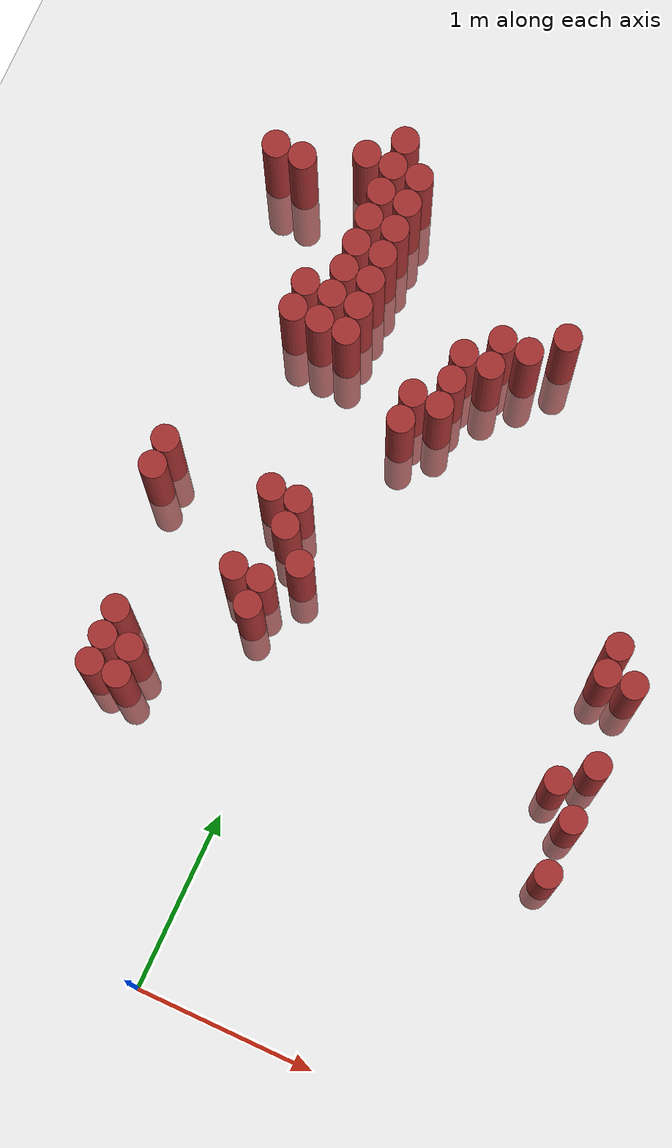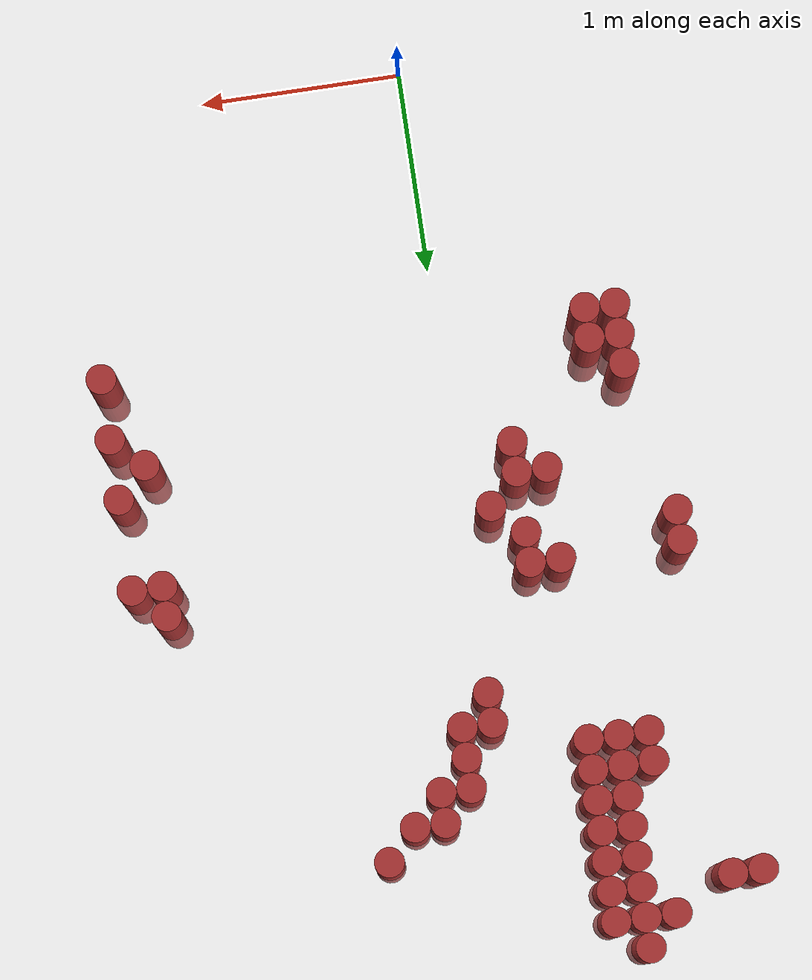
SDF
<sdf version="1.6">
 <world name="default">
  <model name="ground_plane">
   <static>1</static>
   <link name="link">
    <collision name="collision">
     <geometry><plane><normal>0 0 1</normal><size>100 100</size></plane></geometry>
     <surface><friction><ode><mu>100</mu><mu2>50</mu2></ode></friction></surface>
    </collision>
    <visual name="visual">
     <cast_shadows>0</cast_shadows>
     <geometry><plane><normal>0 0 1</normal><size>100 100</size></plane></geometry>
     <material>
      <script><uri>file://media/materials/scripts/gazebo.material</uri><name>Gazebo/Grey</name></script>
     </material>
    </visual>
   </link>
  </model>
  <model name="unit_cylinder_166">
   <static>1</static>
   <pose>-1.175000 4.225000 0.000000 0.000000 0.000000 0.000000</pose>
   <link name="link">
    <inertial>
     <mass>1</mass>
     <inertia><ixx>0.145833</ixx><ixy>0</ixy><ixz>0</ixz><iyy>0.145833</iyy><iyz>0</iyz><izz>0.125</izz></inertia>
    </inertial>
    <collision name="collision">
     <geometry><cylinder><radius>0.075000</radius><length>1.5</length></cylinder></geometry>
    </collision>
    <visual name="visual">
     <geometry><cylinder><radius>0.075000</radius><length>1.5</length></cylinder></geometry>
     <material>
      <ambient>0.648000 0.192000 0.192000 1</ambient>
      <diffuse>0.648000 0.192000 0.192000 1</diffuse>
     </material>
     <material>
      <script><name>Gazebo/Grey</name><uri>file://media/materials/scripts/gazebo.material</uri></script>
     </material>
    </visual>
   </link>
  </model>
  <model name="unit_cylinder_167">
   <static>1</static>
   <pose>-1.025000 2.425000 0.000000 0.000000 0.000000 0.000000</pose>
   <link name="link">
    <inertial>
     <mass>1</mass>
     <inertia><ixx>0.145833</ixx><ixy>0</ixy><ixz>0</ixz><iyy>0.145833</iyy><iyz>0</iyz><izz>0.125</izz></inertia>
    </inertial>
    <collision name="collision">
     <geometry><cylinder><radius>0.075000</radius><length>1.5</length></cylinder></geometry>
    </collision>
    <visual name="visual">
     <geometry><cylinder><radius>0.075000</radius><length>1.5</length></cylinder></geometry>
     <material>
      <ambient>0.648000 0.192000 0.192000 1</ambient>
      <diffuse>0.648000 0.192000 0.192000 1</diffuse>
     </material>
     <material>
      <script><name>Gazebo/Grey</name><uri>file://media/materials/scripts/gazebo.material</uri></script>
     </material>
    </visual>
   </link>
  </model>
  <model name="unit_cylinder_168">
   <static>1</static>
   <pose>-1.025000 2.575000 0.000000 0.000000 0.000000 0.000000</pose>
   <link name="link">
    <inertial>
     <mass>1</mass>
     <inertia><ixx>0.145833</ixx><ixy>0</ixy><ixz>0</ixz><iyy>0.145833</iyy><iyz>0</iyz><izz>0.125</izz></inertia>
    </inertial>
    <collision name="collision">
     <geometry><cylinder><radius>0.075000</radius><length>1.5</length></cylinder></geometry>
    </collision>
    <visual name="visual">
     <geometry><cylinder><radius>0.075000</radius><length>1.5</length></cylinder></geometry>
     <material>
      <ambient>0.648000 0.192000 0.192000 1</ambient>
      <diffuse>0.648000 0.192000 0.192000 1</diffuse>
     </material>
     <material>
      <script><name>Gazebo/Grey</name><uri>file://media/materials/scripts/gazebo.material</uri></script>
     </material>
    </visual>
   </link>
  </model>
  <model name="unit_cylinder_169">
   <static>1</static>
   <pose>-1.025000 4.225000 0.000000 0.000000 0.000000 0.000000</pose>
   <link name="link">
    <inertial>
     <mass>1</mass>
     <inertia><ixx>0.145833</ixx><ixy>0</ixy><ixz>0</ixz><iyy>0.145833</iyy><iyz>0</iyz><izz>0.125</izz></inertia>
    </inertial>
    <collision name="collision">
     <geometry><cylinder><radius>0.075000</radius><length>1.5</length></cylinder></geometry>
    </collision>
    <visual name="visual">
     <geometry><cylinder><radius>0.075000</radius><length>1.5</length></cylinder></geometry>
     <material>
      <ambient>0.648000 0.192000 0.192000 1</ambient>
      <diffuse>0.648000 0.192000 0.192000 1</diffuse>
     </material>
     <material>
      <script><name>Gazebo/Grey</name><uri>file://media/materials/scripts/gazebo.material</uri></script>
     </material>
    </visual>
   </link>
  </model>
  <model name="unit_cylinder_170">
   <static>1</static>
   <pose>-0.875000 1.375000 0.000000 0.000000 0.000000 0.000000</pose>
   <link name="link">
    <inertial>
     <mass>1</mass>
     <inertia><ixx>0.145833</ixx><ixy>0</ixy><ixz>0</ixz><iyy>0.145833</iyy><iyz>0</iyz><izz>0.125</izz></inertia>
    </inertial>
    <collision name="collision">
     <geometry><cylinder><radius>0.075000</radius><length>1.5</length></cylinder></geometry>
    </collision>
    <visual name="visual">
     <geometry><cylinder><radius>0.075000</radius><length>1.5</length></cylinder></geometry>
     <material>
      <ambient>0.648000 0.192000 0.192000 1</ambient>
      <diffuse>0.648000 0.192000 0.192000 1</diffuse>
     </material>
     <material>
      <script><name>Gazebo/Grey</name><uri>file://media/materials/scripts/gazebo.material</uri></script>
     </material>
    </visual>
   </link>
  </model>
  <model name="unit_cylinder_171">
   <static>1</static>
   <pose>-0.875000 1.525000 0.000000 0.000000 0.000000 0.000000</pose>
   <link name="link">
    <inertial>
     <mass>1</mass>
     <inertia><ixx>0.145833</ixx><ixy>0</ixy><ixz>0</ixz><iyy>0.145833</iyy><iyz>0</iyz><izz>0.125</izz></inertia>
    </inertial>
    <collision name="collision">
     <geometry><cylinder><radius>0.075000</radius><length>1.5</length></cylinder></geometry>
    </collision>
    <visual name="visual">
     <geometry><cylinder><radius>0.075000</radius><length>1.5</length></cylinder></geometry>
     <material>
      <ambient>0.648000 0.192000 0.192000 1</ambient>
      <diffuse>0.648000 0.192000 0.192000 1</diffuse>
     </material>
     <material>
      <script><name>Gazebo/Grey</name><uri>file://media/materials/scripts/gazebo.material</uri></script>
     </material>
    </visual>
   </link>
  </model>
  <model name="unit_cylinder_172">
   <static>1</static>
   <pose>-0.875000 1.675000 0.000000 0.000000 0.000000 0.000000</pose>
   <link name="link">
    <inertial>
     <mass>1</mass>
     <inertia><ixx>0.145833</ixx><ixy>0</ixy><ixz>0</ixz><iyy>0.145833</iyy><iyz>0</iyz><izz>0.125</izz></inertia>
    </inertial>
    <collision name="collision">
     <geometry><cylinder><radius>0.075000</radius><length>1.5</length></cylinder></geometry>
    </collision>
    <visual name="visual">
     <geometry><cylinder><radius>0.075000</radius><length>1.5</length></cylinder></geometry>
     <material>
      <ambient>0.648000 0.192000 0.192000 1</ambient>
      <diffuse>0.648000 0.192000 0.192000 1</diffuse>
     </material>
     <material>
      <script><name>Gazebo/Grey</name><uri>file://media/materials/scripts/gazebo.material</uri></script>
     </material>
    </visual>
   </link>
  </model>
  <model name="unit_cylinder_173">
   <static>1</static>
   <pose>-0.725000 1.375000 0.000000 0.000000 0.000000 0.000000</pose>
   <link name="link">
    <inertial>
     <mass>1</mass>
     <inertia><ixx>0.145833</ixx><ixy>0</ixy><ixz>0</ixz><iyy>0.145833</iyy><iyz>0</iyz><izz>0.125</izz></inertia>
    </inertial>
    <collision name="collision">
     <geometry><cylinder><radius>0.075000</radius><length>1.5</length></cylinder></geometry>
    </collision>
    <visual name="visual">
     <geometry><cylinder><radius>0.075000</radius><length>1.5</length></cylinder></geometry>
     <material>
      <ambient>0.648000 0.192000 0.192000 1</ambient>
      <diffuse>0.648000 0.192000 0.192000 1</diffuse>
     </material>
     <material>
      <script><name>Gazebo/Grey</name><uri>file://media/materials/scripts/gazebo.material</uri></script>
     </material>
    </visual>
   </link>
  </model>
  <model name="unit_cylinder_174">
   <static>1</static>
   <pose>-0.725000 1.525000 0.000000 0.000000 0.000000 0.000000</pose>
   <link name="link">
    <inertial>
     <mass>1</mass>
     <inertia><ixx>0.145833</ixx><ixy>0</ixy><ixz>0</ixz><iyy>0.145833</iyy><iyz>0</iyz><izz>0.125</izz></inertia>
    </inertial>
    <collision name="collision">
     <geometry><cylinder><radius>0.075000</radius><length>1.5</length></cylinder></geometry>
    </collision>
    <visual name="visual">
     <geometry><cylinder><radius>0.075000</radius><length>1.5</length></cylinder></geometry>
     <material>
      <ambient>0.648000 0.192000 0.192000 1</ambient>
      <diffuse>0.648000 0.192000 0.192000 1</diffuse>
     </material>
     <material>
      <script><name>Gazebo/Grey</name><uri>file://media/materials/scripts/gazebo.material</uri></script>
     </material>
    </visual>
   </link>
  </model>
  <model name="unit_cylinder_175">
   <static>1</static>
   <pose>-0.725000 3.475000 0.000000 0.000000 0.000000 0.000000</pose>
   <link name="link">
    <inertial>
     <mass>1</mass>
     <inertia><ixx>0.145833</ixx><ixy>0</ixy><ixz>0</ixz><iyy>0.145833</iyy><iyz>0</iyz><izz>0.125</izz></inertia>
    </inertial>
    <collision name="collision">
     <geometry><cylinder><radius>0.075000</radius><length>1.5</length></cylinder></geometry>
    </collision>
    <visual name="visual">
     <geometry><cylinder><radius>0.075000</radius><length>1.5</length></cylinder></geometry>
     <material>
      <ambient>0.648000 0.192000 0.192000 1</ambient>
      <diffuse>0.648000 0.192000 0.192000 1</diffuse>
     </material>
     <material>
      <script><name>Gazebo/Grey</name><uri>file://media/materials/scripts/gazebo.material</uri></script>
     </material>
    </visual>
   </link>
  </model>
  <model name="unit_cylinder_176">
   <static>1</static>
   <pose>-0.725000 3.625000 0.000000 0.000000 0.000000 0.000000</pose>
   <link name="link">
    <inertial>
     <mass>1</mass>
     <inertia><ixx>0.145833</ixx><ixy>0</ixy><ixz>0</ixz><iyy>0.145833</iyy><iyz>0</iyz><izz>0.125</izz></inertia>
    </inertial>
    <collision name="collision">
     <geometry><cylinder><radius>0.075000</radius><length>1.5</length></cylinder></geometry>
    </collision>
    <visual name="visual">
     <geometry><cylinder><radius>0.075000</radius><length>1.5</length></cylinder></geometry>
     <material>
      <ambient>0.648000 0.192000 0.192000 1</ambient>
      <diffuse>0.648000 0.192000 0.192000 1</diffuse>
     </material>
     <material>
      <script><name>Gazebo/Grey</name><uri>file://media/materials/scripts/gazebo.material</uri></script>
     </material>
    </visual>
   </link>
  </model>
  <model name="unit_cylinder_177">
   <static>1</static>
   <pose>-0.725000 4.375000 0.000000 0.000000 0.000000 0.000000</pose>
   <link name="link">
    <inertial>
     <mass>1</mass>
     <inertia><ixx>0.145833</ixx><ixy>0</ixy><ixz>0</ixz><iyy>0.145833</iyy><iyz>0</iyz><izz>0.125</izz></inertia>
    </inertial>
    <collision name="collision">
     <geometry><cylinder><radius>0.075000</radius><length>1.5</length></cylinder></geometry>
    </collision>
    <visual name="visual">
     <geometry><cylinder><radius>0.075000</radius><length>1.5</length></cylinder></geometry>
     <material>
      <ambient>0.648000 0.192000 0.192000 1</ambient>
      <diffuse>0.648000 0.192000 0.192000 1</diffuse>
     </material>
     <material>
      <script><name>Gazebo/Grey</name><uri>file://media/materials/scripts/gazebo.material</uri></script>
     </material>
    </visual>
   </link>
  </model>
  <model name="unit_cylinder_179">
   <static>1</static>
   <pose>-0.575000 3.475000 0.000000 0.000000 0.000000 0.000000</pose>
   <link name="link">
    <inertial>
     <mass>1</mass>
     <inertia><ixx>0.145833</ixx><ixy>0</ixy><ixz>0</ixz><iyy>0.145833</iyy><iyz>0</iyz><izz>0.125</izz></inertia>
    </inertial>
    <collision name="collision">
     <geometry><cylinder><radius>0.075000</radius><length>1.5</length></cylinder></geometry>
    </collision>
    <visual name="visual">
     <geometry><cylinder><radius>0.075000</radius><length>1.5</length></cylinder></geometry>
     <material>
      <ambient>0.648000 0.192000 0.192000 1</ambient>
      <diffuse>0.648000 0.192000 0.192000 1</diffuse>
     </material>
     <material>
      <script><name>Gazebo/Grey</name><uri>file://media/materials/scripts/gazebo.material</uri></script>
     </material>
    </visual>
   </link>
  </model>
  <model name="unit_cylinder_180">
   <static>1</static>
   <pose>-0.575000 3.625000 0.000000 0.000000 0.000000 0.000000</pose>
   <link name="link">
    <inertial>
     <mass>1</mass>
     <inertia><ixx>0.145833</ixx><ixy>0</ixy><ixz>0</ixz><iyy>0.145833</iyy><iyz>0</iyz><izz>0.125</izz></inertia>
    </inertial>
    <collision name="collision">
     <geometry><cylinder><radius>0.075000</radius><length>1.5</length></cylinder></geometry>
    </collision>
    <visual name="visual">
     <geometry><cylinder><radius>0.075000</radius><length>1.5</length></cylinder></geometry>
     <material>
      <ambient>0.648000 0.192000 0.192000 1</ambient>
      <diffuse>0.648000 0.192000 0.192000 1</diffuse>
     </material>
     <material>
      <script><name>Gazebo/Grey</name><uri>file://media/materials/scripts/gazebo.material</uri></script>
     </material>
    </visual>
   </link>
  </model>
  <model name="unit_cylinder_181">
   <static>1</static>
   <pose>-0.575000 3.775000 0.000000 0.000000 0.000000 0.000000</pose>
   <link name="link">
    <inertial>
     <mass>1</mass>
     <inertia><ixx>0.145833</ixx><ixy>0</ixy><ixz>0</ixz><iyy>0.145833</iyy><iyz>0</iyz><izz>0.125</izz></inertia>
    </inertial>
    <collision name="collision">
     <geometry><cylinder><radius>0.075000</radius><length>1.5</length></cylinder></geometry>
    </collision>
    <visual name="visual">
     <geometry><cylinder><radius>0.075000</radius><length>1.5</length></cylinder></geometry>
     <material>
      <ambient>0.648000 0.192000 0.192000 1</ambient>
      <diffuse>0.648000 0.192000 0.192000 1</diffuse>
     </material>
     <material>
      <script><name>Gazebo/Grey</name><uri>file://media/materials/scripts/gazebo.material</uri></script>
     </material>
    </visual>
   </link>
  </model>
  <model name="unit_cylinder_182">
   <static>1</static>
   <pose>-0.575000 3.925000 0.000000 0.000000 0.000000 0.000000</pose>
   <link name="link">
    <inertial>
     <mass>1</mass>
     <inertia><ixx>0.145833</ixx><ixy>0</ixy><ixz>0</ixz><iyy>0.145833</iyy><iyz>0</iyz><izz>0.125</izz></inertia>
    </inertial>
    <collision name="collision">
     <geometry><cylinder><radius>0.075000</radius><length>1.5</length></cylinder></geometry>
    </collision>
    <visual name="visual">
     <geometry><cylinder><radius>0.075000</radius><length>1.5</length></cylinder></geometry>
     <material>
      <ambient>0.648000 0.192000 0.192000 1</ambient>
      <diffuse>0.648000 0.192000 0.192000 1</diffuse>
     </material>
     <material>
      <script><name>Gazebo/Grey</name><uri>file://media/materials/scripts/gazebo.material</uri></script>
     </material>
    </visual>
   </link>
  </model>
  <model name="unit_cylinder_183">
   <static>1</static>
   <pose>-0.575000 4.075000 0.000000 0.000000 0.000000 0.000000</pose>
   <link name="link">
    <inertial>
     <mass>1</mass>
     <inertia><ixx>0.145833</ixx><ixy>0</ixy><ixz>0</ixz><iyy>0.145833</iyy><iyz>0</iyz><izz>0.125</izz></inertia>
    </inertial>
    <collision name="collision">
     <geometry><cylinder><radius>0.075000</radius><length>1.5</length></cylinder></geometry>
    </collision>
    <visual name="visual">
     <geometry><cylinder><radius>0.075000</radius><length>1.5</length></cylinder></geometry>
     <material>
      <ambient>0.648000 0.192000 0.192000 1</ambient>
      <diffuse>0.648000 0.192000 0.192000 1</diffuse>
     </material>
     <material>
      <script><name>Gazebo/Grey</name><uri>file://media/materials/scripts/gazebo.material</uri></script>
     </material>
    </visual>
   </link>
  </model>
  <model name="unit_cylinder_184">
   <static>1</static>
   <pose>-0.575000 4.225000 0.000000 0.000000 0.000000 0.000000</pose>
   <link name="link">
    <inertial>
     <mass>1</mass>
     <inertia><ixx>0.145833</ixx><ixy>0</ixy><ixz>0</ixz><iyy>0.145833</iyy><iyz>0</iyz><izz>0.125</izz></inertia>
    </inertial>
    <collision name="collision">
     <geometry><cylinder><radius>0.075000</radius><length>1.5</length></cylinder></geometry>
    </collision>
    <visual name="visual">
     <geometry><cylinder><radius>0.075000</radius><length>1.5</length></cylinder></geometry>
     <material>
      <ambient>0.648000 0.192000 0.192000 1</ambient>
      <diffuse>0.648000 0.192000 0.192000 1</diffuse>
     </material>
     <material>
      <script><name>Gazebo/Grey</name><uri>file://media/materials/scripts/gazebo.material</uri></script>
     </material>
    </visual>
   </link>
  </model>
  <model name="unit_cylinder_185">
   <static>1</static>
   <pose>-0.575000 4.375000 0.000000 0.000000 0.000000 0.000000</pose>
   <link name="link">
    <inertial>
     <mass>1</mass>
     <inertia><ixx>0.145833</ixx><ixy>0</ixy><ixz>0</ixz><iyy>0.145833</iyy><iyz>0</iyz><izz>0.125</izz></inertia>
    </inertial>
    <collision name="collision">
     <geometry><cylinder><radius>0.075000</radius><length>1.5</length></cylinder></geometry>
    </collision>
    <visual name="visual">
     <geometry><cylinder><radius>0.075000</radius><length>1.5</length></cylinder></geometry>
     <material>
      <ambient>0.648000 0.192000 0.192000 1</ambient>
      <diffuse>0.648000 0.192000 0.192000 1</diffuse>
     </material>
     <material>
      <script><name>Gazebo/Grey</name><uri>file://media/materials/scripts/gazebo.material</uri></script>
     </material>
    </visual>
   </link>
  </model>
  <model name="unit_cylinder_186">
   <static>1</static>
   <pose>-0.575000 4.525000 0.000000 0.000000 0.000000 0.000000</pose>
   <link name="link">
    <inertial>
     <mass>1</mass>
     <inertia><ixx>0.145833</ixx><ixy>0</ixy><ixz>0</ixz><iyy>0.145833</iyy><iyz>0</iyz><izz>0.125</izz></inertia>
    </inertial>
    <collision name="collision">
     <geometry><cylinder><radius>0.075000</radius><length>1.5</length></cylinder></geometry>
    </collision>
    <visual name="visual">
     <geometry><cylinder><radius>0.075000</radius><length>1.5</length></cylinder></geometry>
     <material>
      <ambient>0.648000 0.192000 0.192000 1</ambient>
      <diffuse>0.648000 0.192000 0.192000 1</diffuse>
     </material>
     <material>
      <script><name>Gazebo/Grey</name><uri>file://media/materials/scripts/gazebo.material</uri></script>
     </material>
    </visual>
   </link>
  </model>
  <model name="unit_cylinder_189">
   <static>1</static>
   <pose>-0.425000 2.125000 0.000000 0.000000 0.000000 0.000000</pose>
   <link name="link">
    <inertial>
     <mass>1</mass>
     <inertia><ixx>0.145833</ixx><ixy>0</ixy><ixz>0</ixz><iyy>0.145833</iyy><iyz>0</iyz><izz>0.125</izz></inertia>
    </inertial>
    <collision name="collision">
     <geometry><cylinder><radius>0.075000</radius><length>1.5</length></cylinder></geometry>
    </collision>
    <visual name="visual">
     <geometry><cylinder><radius>0.075000</radius><length>1.5</length></cylinder></geometry>
     <material>
      <ambient>0.648000 0.192000 0.192000 1</ambient>
      <diffuse>0.648000 0.192000 0.192000 1</diffuse>
     </material>
     <material>
      <script><name>Gazebo/Grey</name><uri>file://media/materials/scripts/gazebo.material</uri></script>
     </material>
    </visual>
   </link>
  </model>
  <model name="unit_cylinder_190">
   <static>1</static>
   <pose>-0.425000 2.575000 0.000000 0.000000 0.000000 0.000000</pose>
   <link name="link">
    <inertial>
     <mass>1</mass>
     <inertia><ixx>0.145833</ixx><ixy>0</ixy><ixz>0</ixz><iyy>0.145833</iyy><iyz>0</iyz><izz>0.125</izz></inertia>
    </inertial>
    <collision name="collision">
     <geometry><cylinder><radius>0.075000</radius><length>1.5</length></cylinder></geometry>
    </collision>
    <visual name="visual">
     <geometry><cylinder><radius>0.075000</radius><length>1.5</length></cylinder></geometry>
     <material>
      <ambient>0.648000 0.192000 0.192000 1</ambient>
      <diffuse>0.648000 0.192000 0.192000 1</diffuse>
     </material>
     <material>
      <script><name>Gazebo/Grey</name><uri>file://media/materials/scripts/gazebo.material</uri></script>
     </material>
    </visual>
   </link>
  </model>
  <model name="unit_cylinder_191">
   <static>1</static>
   <pose>-0.425000 3.475000 0.000000 0.000000 0.000000 0.000000</pose>
   <link name="link">
    <inertial>
     <mass>1</mass>
     <inertia><ixx>0.145833</ixx><ixy>0</ixy><ixz>0</ixz><iyy>0.145833</iyy><iyz>0</iyz><izz>0.125</izz></inertia>
    </inertial>
    <collision name="collision">
     <geometry><cylinder><radius>0.075000</radius><length>1.5</length></cylinder></geometry>
    </collision>
    <visual name="visual">
     <geometry><cylinder><radius>0.075000</radius><length>1.5</length></cylinder></geometry>
     <material>
      <ambient>0.648000 0.192000 0.192000 1</ambient>
      <diffuse>0.648000 0.192000 0.192000 1</diffuse>
     </material>
     <material>
      <script><name>Gazebo/Grey</name><uri>file://media/materials/scripts/gazebo.material</uri></script>
     </material>
    </visual>
   </link>
  </model>
  <model name="unit_cylinder_192">
   <static>1</static>
   <pose>-0.425000 3.625000 0.000000 0.000000 0.000000 0.000000</pose>
   <link name="link">
    <inertial>
     <mass>1</mass>
     <inertia><ixx>0.145833</ixx><ixy>0</ixy><ixz>0</ixz><iyy>0.145833</iyy><iyz>0</iyz><izz>0.125</izz></inertia>
    </inertial>
    <collision name="collision">
     <geometry><cylinder><radius>0.075000</radius><length>1.5</length></cylinder></geometry>
    </collision>
    <visual name="visual">
     <geometry><cylinder><radius>0.075000</radius><length>1.5</length></cylinder></geometry>
     <material>
      <ambient>0.648000 0.192000 0.192000 1</ambient>
      <diffuse>0.648000 0.192000 0.192000 1</diffuse>
     </material>
     <material>
      <script><name>Gazebo/Grey</name><uri>file://media/materials/scripts/gazebo.material</uri></script>
     </material>
    </visual>
   </link>
  </model>
  <model name="unit_cylinder_193">
   <static>1</static>
   <pose>-0.425000 3.775000 0.000000 0.000000 0.000000 0.000000</pose>
   <link name="link">
    <inertial>
     <mass>1</mass>
     <inertia><ixx>0.145833</ixx><ixy>0</ixy><ixz>0</ixz><iyy>0.145833</iyy><iyz>0</iyz><izz>0.125</izz></inertia>
    </inertial>
    <collision name="collision">
     <geometry><cylinder><radius>0.075000</radius><length>1.5</length></cylinder></geometry>
    </collision>
    <visual name="visual">
     <geometry><cylinder><radius>0.075000</radius><length>1.5</length></cylinder></geometry>
     <material>
      <ambient>0.648000 0.192000 0.192000 1</ambient>
      <diffuse>0.648000 0.192000 0.192000 1</diffuse>
     </material>
     <material>
      <script><name>Gazebo/Grey</name><uri>file://media/materials/scripts/gazebo.material</uri></script>
     </material>
    </visual>
   </link>
  </model>
  <model name="unit_cylinder_194">
   <static>1</static>
   <pose>-0.425000 3.925000 0.000000 0.000000 0.000000 0.000000</pose>
   <link name="link">
    <inertial>
     <mass>1</mass>
     <inertia><ixx>0.145833</ixx><ixy>0</ixy><ixz>0</ixz><iyy>0.145833</iyy><iyz>0</iyz><izz>0.125</izz></inertia>
    </inertial>
    <collision name="collision">
     <geometry><cylinder><radius>0.075000</radius><length>1.5</length></cylinder></geometry>
    </collision>
    <visual name="visual">
     <geometry><cylinder><radius>0.075000</radius><length>1.5</length></cylinder></geometry>
     <material>
      <ambient>0.648000 0.192000 0.192000 1</ambient>
      <diffuse>0.648000 0.192000 0.192000 1</diffuse>
     </material>
     <material>
      <script><name>Gazebo/Grey</name><uri>file://media/materials/scripts/gazebo.material</uri></script>
     </material>
    </visual>
   </link>
  </model>
  <model name="unit_cylinder_195">
   <static>1</static>
   <pose>-0.425000 4.075000 0.000000 0.000000 0.000000 0.000000</pose>
   <link name="link">
    <inertial>
     <mass>1</mass>
     <inertia><ixx>0.145833</ixx><ixy>0</ixy><ixz>0</ixz><iyy>0.145833</iyy><iyz>0</iyz><izz>0.125</izz></inertia>
    </inertial>
    <collision name="collision">
     <geometry><cylinder><radius>0.075000</radius><length>1.5</length></cylinder></geometry>
    </collision>
    <visual name="visual">
     <geometry><cylinder><radius>0.075000</radius><length>1.5</length></cylinder></geometry>
     <material>
      <ambient>0.648000 0.192000 0.192000 1</ambient>
      <diffuse>0.648000 0.192000 0.192000 1</diffuse>
     </material>
     <material>
      <script><name>Gazebo/Grey</name><uri>file://media/materials/scripts/gazebo.material</uri></script>
     </material>
    </visual>
   </link>
  </model>
  <model name="unit_cylinder_196">
   <static>1</static>
   <pose>-0.425000 4.225000 0.000000 0.000000 0.000000 0.000000</pose>
   <link name="link">
    <inertial>
     <mass>1</mass>
     <inertia><ixx>0.145833</ixx><ixy>0</ixy><ixz>0</ixz><iyy>0.145833</iyy><iyz>0</iyz><izz>0.125</izz></inertia>
    </inertial>
    <collision name="collision">
     <geometry><cylinder><radius>0.075000</radius><length>1.5</length></cylinder></geometry>
    </collision>
    <visual name="visual">
     <geometry><cylinder><radius>0.075000</radius><length>1.5</length></cylinder></geometry>
     <material>
      <ambient>0.648000 0.192000 0.192000 1</ambient>
      <diffuse>0.648000 0.192000 0.192000 1</diffuse>
     </material>
     <material>
      <script><name>Gazebo/Grey</name><uri>file://media/materials/scripts/gazebo.material</uri></script>
     </material>
    </visual>
   </link>
  </model>
  <model name="unit_cylinder_197">
   <static>1</static>
   <pose>-0.425000 4.375000 0.000000 0.000000 0.000000 0.000000</pose>
   <link name="link">
    <inertial>
     <mass>1</mass>
     <inertia><ixx>0.145833</ixx><ixy>0</ixy><ixz>0</ixz><iyy>0.145833</iyy><iyz>0</iyz><izz>0.125</izz></inertia>
    </inertial>
    <collision name="collision">
     <geometry><cylinder><radius>0.075000</radius><length>1.5</length></cylinder></geometry>
    </collision>
    <visual name="visual">
     <geometry><cylinder><radius>0.075000</radius><length>1.5</length></cylinder></geometry>
     <material>
      <ambient>0.648000 0.192000 0.192000 1</ambient>
      <diffuse>0.648000 0.192000 0.192000 1</diffuse>
     </material>
     <material>
      <script><name>Gazebo/Grey</name><uri>file://media/materials/scripts/gazebo.material</uri></script>
     </material>
    </visual>
   </link>
  </model>
  <model name="unit_cylinder_199">
   <static>1</static>
   <pose>-0.275000 1.975000 0.000000 0.000000 0.000000 0.000000</pose>
   <link name="link">
    <inertial>
     <mass>1</mass>
     <inertia><ixx>0.145833</ixx><ixy>0</ixy><ixz>0</ixz><iyy>0.145833</iyy><iyz>0</iyz><izz>0.125</izz></inertia>
    </inertial>
    <collision name="collision">
     <geometry><cylinder><radius>0.075000</radius><length>1.5</length></cylinder></geometry>
    </collision>
    <visual name="visual">
     <geometry><cylinder><radius>0.075000</radius><length>1.5</length></cylinder></geometry>
     <material>
      <ambient>0.648000 0.192000 0.192000 1</ambient>
      <diffuse>0.648000 0.192000 0.192000 1</diffuse>
     </material>
     <material>
      <script><name>Gazebo/Grey</name><uri>file://media/materials/scripts/gazebo.material</uri></script>
     </material>
    </visual>
   </link>
  </model>
  <model name="unit_cylinder_200">
   <static>1</static>
   <pose>-0.275000 2.125000 0.000000 0.000000 0.000000 0.000000</pose>
   <link name="link">
    <inertial>
     <mass>1</mass>
     <inertia><ixx>0.145833</ixx><ixy>0</ixy><ixz>0</ixz><iyy>0.145833</iyy><iyz>0</iyz><izz>0.125</izz></inertia>
    </inertial>
    <collision name="collision">
     <geometry><cylinder><radius>0.075000</radius><length>1.5</length></cylinder></geometry>
    </collision>
    <visual name="visual">
     <geometry><cylinder><radius>0.075000</radius><length>1.5</length></cylinder></geometry>
     <material>
      <ambient>0.648000 0.192000 0.192000 1</ambient>
      <diffuse>0.648000 0.192000 0.192000 1</diffuse>
     </material>
     <material>
      <script><name>Gazebo/Grey</name><uri>file://media/materials/scripts/gazebo.material</uri></script>
     </material>
    </visual>
   </link>
  </model>
  <model name="unit_cylinder_201">
   <static>1</static>
   <pose>-0.275000 2.425000 0.000000 0.000000 0.000000 0.000000</pose>
   <link name="link">
    <inertial>
     <mass>1</mass>
     <inertia><ixx>0.145833</ixx><ixy>0</ixy><ixz>0</ixz><iyy>0.145833</iyy><iyz>0</iyz><izz>0.125</izz></inertia>
    </inertial>
    <collision name="collision">
     <geometry><cylinder><radius>0.075000</radius><length>1.5</length></cylinder></geometry>
    </collision>
    <visual name="visual">
     <geometry><cylinder><radius>0.075000</radius><length>1.5</length></cylinder></geometry>
     <material>
      <ambient>0.648000 0.192000 0.192000 1</ambient>
      <diffuse>0.648000 0.192000 0.192000 1</diffuse>
     </material>
     <material>
      <script><name>Gazebo/Grey</name><uri>file://media/materials/scripts/gazebo.material</uri></script>
     </material>
    </visual>
   </link>
  </model>
  <model name="unit_cylinder_202">
   <static>1</static>
   <pose>-0.275000 2.575000 0.000000 0.000000 0.000000 0.000000</pose>
   <link name="link">
    <inertial>
     <mass>1</mass>
     <inertia><ixx>0.145833</ixx><ixy>0</ixy><ixz>0</ixz><iyy>0.145833</iyy><iyz>0</iyz><izz>0.125</izz></inertia>
    </inertial>
    <collision name="collision">
     <geometry><cylinder><radius>0.075000</radius><length>1.5</length></cylinder></geometry>
    </collision>
    <visual name="visual">
     <geometry><cylinder><radius>0.075000</radius><length>1.5</length></cylinder></geometry>
     <material>
      <ambient>0.648000 0.192000 0.192000 1</ambient>
      <diffuse>0.648000 0.192000 0.192000 1</diffuse>
     </material>
     <material>
      <script><name>Gazebo/Grey</name><uri>file://media/materials/scripts/gazebo.material</uri></script>
     </material>
    </visual>
   </link>
  </model>
  <model name="unit_cylinder_204">
   <static>1</static>
   <pose>-0.125000 2.275000 0.000000 0.000000 0.000000 0.000000</pose>
   <link name="link">
    <inertial>
     <mass>1</mass>
     <inertia><ixx>0.145833</ixx><ixy>0</ixy><ixz>0</ixz><iyy>0.145833</iyy><iyz>0</iyz><izz>0.125</izz></inertia>
    </inertial>
    <collision name="collision">
     <geometry><cylinder><radius>0.075000</radius><length>1.5</length></cylinder></geometry>
    </collision>
    <visual name="visual">
     <geometry><cylinder><radius>0.075000</radius><length>1.5</length></cylinder></geometry>
     <material>
      <ambient>0.648000 0.192000 0.192000 1</ambient>
      <diffuse>0.648000 0.192000 0.192000 1</diffuse>
     </material>
     <material>
      <script><name>Gazebo/Grey</name><uri>file://media/materials/scripts/gazebo.material</uri></script>
     </material>
    </visual>
   </link>
  </model>
  <model name="unit_cylinder_208">
   <static>1</static>
   <pose>0.025000 3.175000 0.000000 0.000000 0.000000 0.000000</pose>
   <link name="link">
    <inertial>
     <mass>1</mass>
     <inertia><ixx>0.145833</ixx><ixy>0</ixy><ixz>0</ixz><iyy>0.145833</iyy><iyz>0</iyz><izz>0.125</izz></inertia>
    </inertial>
    <collision name="collision">
     <geometry><cylinder><radius>0.075000</radius><length>1.5</length></cylinder></geometry>
    </collision>
    <visual name="visual">
     <geometry><cylinder><radius>0.075000</radius><length>1.5</length></cylinder></geometry>
     <material>
      <ambient>0.648000 0.192000 0.192000 1</ambient>
      <diffuse>0.648000 0.192000 0.192000 1</diffuse>
     </material>
     <material>
      <script><name>Gazebo/Grey</name><uri>file://media/materials/scripts/gazebo.material</uri></script>
     </material>
    </visual>
   </link>
  </model>
  <model name="unit_cylinder_209">
   <static>1</static>
   <pose>0.025000 3.325000 0.000000 0.000000 0.000000 0.000000</pose>
   <link name="link">
    <inertial>
     <mass>1</mass>
     <inertia><ixx>0.145833</ixx><ixy>0</ixy><ixz>0</ixz><iyy>0.145833</iyy><iyz>0</iyz><izz>0.125</izz></inertia>
    </inertial>
    <collision name="collision">
     <geometry><cylinder><radius>0.075000</radius><length>1.5</length></cylinder></geometry>
    </collision>
    <visual name="visual">
     <geometry><cylinder><radius>0.075000</radius><length>1.5</length></cylinder></geometry>
     <material>
      <ambient>0.648000 0.192000 0.192000 1</ambient>
      <diffuse>0.648000 0.192000 0.192000 1</diffuse>
     </material>
     <material>
      <script><name>Gazebo/Grey</name><uri>file://media/materials/scripts/gazebo.material</uri></script>
     </material>
    </visual>
   </link>
  </model>
  <model name="unit_cylinder_212">
   <static>1</static>
   <pose>0.175000 3.325000 0.000000 0.000000 0.000000 0.000000</pose>
   <link name="link">
    <inertial>
     <mass>1</mass>
     <inertia><ixx>0.145833</ixx><ixy>0</ixy><ixz>0</ixz><iyy>0.145833</iyy><iyz>0</iyz><izz>0.125</izz></inertia>
    </inertial>
    <collision name="collision">
     <geometry><cylinder><radius>0.075000</radius><length>1.5</length></cylinder></geometry>
    </collision>
    <visual name="visual">
     <geometry><cylinder><radius>0.075000</radius><length>1.5</length></cylinder></geometry>
     <material>
      <ambient>0.648000 0.192000 0.192000 1</ambient>
      <diffuse>0.648000 0.192000 0.192000 1</diffuse>
     </material>
     <material>
      <script><name>Gazebo/Grey</name><uri>file://media/materials/scripts/gazebo.material</uri></script>
     </material>
    </visual>
   </link>
  </model>
  <model name="unit_cylinder_213">
   <static>1</static>
   <pose>0.175000 3.475000 0.000000 0.000000 0.000000 0.000000</pose>
   <link name="link">
    <inertial>
     <mass>1</mass>
     <inertia><ixx>0.145833</ixx><ixy>0</ixy><ixz>0</ixz><iyy>0.145833</iyy><iyz>0</iyz><izz>0.125</izz></inertia>
    </inertial>
    <collision name="collision">
     <geometry><cylinder><radius>0.075000</radius><length>1.5</length></cylinder></geometry>
    </collision>
    <visual name="visual">
     <geometry><cylinder><radius>0.075000</radius><length>1.5</length></cylinder></geometry>
     <material>
      <ambient>0.648000 0.192000 0.192000 1</ambient>
      <diffuse>0.648000 0.192000 0.192000 1</diffuse>
     </material>
     <material>
      <script><name>Gazebo/Grey</name><uri>file://media/materials/scripts/gazebo.material</uri></script>
     </material>
    </visual>
   </link>
  </model>
  <model name="unit_cylinder_214">
   <static>1</static>
   <pose>0.175000 3.625000 0.000000 0.000000 0.000000 0.000000</pose>
   <link name="link">
    <inertial>
     <mass>1</mass>
     <inertia><ixx>0.145833</ixx><ixy>0</ixy><ixz>0</ixz><iyy>0.145833</iyy><iyz>0</iyz><izz>0.125</izz></inertia>
    </inertial>
    <collision name="collision">
     <geometry><cylinder><radius>0.075000</radius><length>1.5</length></cylinder></geometry>
    </collision>
    <visual name="visual">
     <geometry><cylinder><radius>0.075000</radius><length>1.5</length></cylinder></geometry>
     <material>
      <ambient>0.648000 0.192000 0.192000 1</ambient>
      <diffuse>0.648000 0.192000 0.192000 1</diffuse>
     </material>
     <material>
      <script><name>Gazebo/Grey</name><uri>file://media/materials/scripts/gazebo.material</uri></script>
     </material>
    </visual>
   </link>
  </model>
  <model name="unit_cylinder_216">
   <static>1</static>
   <pose>0.325000 3.625000 0.000000 0.000000 0.000000 0.000000</pose>
   <link name="link">
    <inertial>
     <mass>1</mass>
     <inertia><ixx>0.145833</ixx><ixy>0</ixy><ixz>0</ixz><iyy>0.145833</iyy><iyz>0</iyz><izz>0.125</izz></inertia>
    </inertial>
    <collision name="collision">
     <geometry><cylinder><radius>0.075000</radius><length>1.5</length></cylinder></geometry>
    </collision>
    <visual name="visual">
     <geometry><cylinder><radius>0.075000</radius><length>1.5</length></cylinder></geometry>
     <material>
      <ambient>0.648000 0.192000 0.192000 1</ambient>
      <diffuse>0.648000 0.192000 0.192000 1</diffuse>
     </material>
     <material>
      <script><name>Gazebo/Grey</name><uri>file://media/materials/scripts/gazebo.material</uri></script>
     </material>
    </visual>
   </link>
  </model>
  <model name="unit_cylinder_217">
   <static>1</static>
   <pose>0.325000 3.775000 0.000000 0.000000 0.000000 0.000000</pose>
   <link name="link">
    <inertial>
     <mass>1</mass>
     <inertia><ixx>0.145833</ixx><ixy>0</ixy><ixz>0</ixz><iyy>0.145833</iyy><iyz>0</iyz><izz>0.125</izz></inertia>
    </inertial>
    <collision name="collision">
     <geometry><cylinder><radius>0.075000</radius><length>1.5</length></cylinder></geometry>
    </collision>
    <visual name="visual">
     <geometry><cylinder><radius>0.075000</radius><length>1.5</length></cylinder></geometry>
     <material>
      <ambient>0.648000 0.192000 0.192000 1</ambient>
      <diffuse>0.648000 0.192000 0.192000 1</diffuse>
     </material>
     <material>
      <script><name>Gazebo/Grey</name><uri>file://media/materials/scripts/gazebo.material</uri></script>
     </material>
    </visual>
   </link>
  </model>
  <model name="unit_cylinder_218">
   <static>1</static>
   <pose>0.475000 3.775000 0.000000 0.000000 0.000000 0.000000</pose>
   <link name="link">
    <inertial>
     <mass>1</mass>
     <inertia><ixx>0.145833</ixx><ixy>0</ixy><ixz>0</ixz><iyy>0.145833</iyy><iyz>0</iyz><izz>0.125</izz></inertia>
    </inertial>
    <collision name="collision">
     <geometry><cylinder><radius>0.075000</radius><length>1.5</length></cylinder></geometry>
    </collision>
    <visual name="visual">
     <geometry><cylinder><radius>0.075000</radius><length>1.5</length></cylinder></geometry>
     <material>
      <ambient>0.648000 0.192000 0.192000 1</ambient>
      <diffuse>0.648000 0.192000 0.192000 1</diffuse>
     </material>
     <material>
      <script><name>Gazebo/Grey</name><uri>file://media/materials/scripts/gazebo.material</uri></script>
     </material>
    </visual>
   </link>
  </model>
  <model name="unit_cylinder_219">
   <static>1</static>
   <pose>0.625000 3.925000 0.000000 0.000000 0.000000 0.000000</pose>
   <link name="link">
    <inertial>
     <mass>1</mass>
     <inertia><ixx>0.145833</ixx><ixy>0</ixy><ixz>0</ixz><iyy>0.145833</iyy><iyz>0</iyz><izz>0.125</izz></inertia>
    </inertial>
    <collision name="collision">
     <geometry><cylinder><radius>0.075000</radius><length>1.5</length></cylinder></geometry>
    </collision>
    <visual name="visual">
     <geometry><cylinder><radius>0.075000</radius><length>1.5</length></cylinder></geometry>
     <material>
      <ambient>0.648000 0.192000 0.192000 1</ambient>
      <diffuse>0.648000 0.192000 0.192000 1</diffuse>
     </material>
     <material>
      <script><name>Gazebo/Grey</name><uri>file://media/materials/scripts/gazebo.material</uri></script>
     </material>
    </visual>
   </link>
  </model>
  <model name="unit_cylinder_221">
   <static>1</static>
   <pose>1.525000 1.825000 0.000000 0.000000 0.000000 0.000000</pose>
   <link name="link">
    <inertial>
     <mass>1</mass>
     <inertia><ixx>0.145833</ixx><ixy>0</ixy><ixz>0</ixz><iyy>0.145833</iyy><iyz>0</iyz><izz>0.125</izz></inertia>
    </inertial>
    <collision name="collision">
     <geometry><cylinder><radius>0.075000</radius><length>1.5</length></cylinder></geometry>
    </collision>
    <visual name="visual">
     <geometry><cylinder><radius>0.075000</radius><length>1.5</length></cylinder></geometry>
     <material>
      <ambient>0.648000 0.192000 0.192000 1</ambient>
      <diffuse>0.648000 0.192000 0.192000 1</diffuse>
     </material>
     <material>
      <script><name>Gazebo/Grey</name><uri>file://media/materials/scripts/gazebo.material</uri></script>
     </material>
    </visual>
   </link>
  </model>
  <model name="unit_cylinder_222">
   <static>1</static>
   <pose>1.525000 2.425000 0.000000 0.000000 0.000000 0.000000</pose>
   <link name="link">
    <inertial>
     <mass>1</mass>
     <inertia><ixx>0.145833</ixx><ixy>0</ixy><ixz>0</ixz><iyy>0.145833</iyy><iyz>0</iyz><izz>0.125</izz></inertia>
    </inertial>
    <collision name="collision">
     <geometry><cylinder><radius>0.075000</radius><length>1.5</length></cylinder></geometry>
    </collision>
    <visual name="visual">
     <geometry><cylinder><radius>0.075000</radius><length>1.5</length></cylinder></geometry>
     <material>
      <ambient>0.648000 0.192000 0.192000 1</ambient>
      <diffuse>0.648000 0.192000 0.192000 1</diffuse>
     </material>
     <material>
      <script><name>Gazebo/Grey</name><uri>file://media/materials/scripts/gazebo.material</uri></script>
     </material>
    </visual>
   </link>
  </model>
  <model name="unit_cylinder_223">
   <static>1</static>
   <pose>1.525000 2.575000 0.000000 0.000000 0.000000 0.000000</pose>
   <link name="link">
    <inertial>
     <mass>1</mass>
     <inertia><ixx>0.145833</ixx><ixy>0</ixy><ixz>0</ixz><iyy>0.145833</iyy><iyz>0</iyz><izz>0.125</izz></inertia>
    </inertial>
    <collision name="collision">
     <geometry><cylinder><radius>0.075000</radius><length>1.5</length></cylinder></geometry>
    </collision>
    <visual name="visual">
     <geometry><cylinder><radius>0.075000</radius><length>1.5</length></cylinder></geometry>
     <material>
      <ambient>0.648000 0.192000 0.192000 1</ambient>
      <diffuse>0.648000 0.192000 0.192000 1</diffuse>
     </material>
     <material>
      <script><name>Gazebo/Grey</name><uri>file://media/materials/scripts/gazebo.material</uri></script>
     </material>
    </visual>
   </link>
  </model>
  <model name="unit_cylinder_227">
   <static>1</static>
   <pose>1.675000 1.375000 0.000000 0.000000 0.000000 0.000000</pose>
   <link name="link">
    <inertial>
     <mass>1</mass>
     <inertia><ixx>0.145833</ixx><ixy>0</ixy><ixz>0</ixz><iyy>0.145833</iyy><iyz>0</iyz><izz>0.125</izz></inertia>
    </inertial>
    <collision name="collision">
     <geometry><cylinder><radius>0.075000</radius><length>1.5</length></cylinder></geometry>
    </collision>
    <visual name="visual">
     <geometry><cylinder><radius>0.075000</radius><length>1.5</length></cylinder></geometry>
     <material>
      <ambient>0.648000 0.192000 0.192000 1</ambient>
      <diffuse>0.648000 0.192000 0.192000 1</diffuse>
     </material>
     <material>
      <script><name>Gazebo/Grey</name><uri>file://media/materials/scripts/gazebo.material</uri></script>
     </material>
    </visual>
   </link>
  </model>
  <model name="unit_cylinder_228">
   <static>1</static>
   <pose>1.675000 1.675000 0.000000 0.000000 0.000000 0.000000</pose>
   <link name="link">
    <inertial>
     <mass>1</mass>
     <inertia><ixx>0.145833</ixx><ixy>0</ixy><ixz>0</ixz><iyy>0.145833</iyy><iyz>0</iyz><izz>0.125</izz></inertia>
    </inertial>
    <collision name="collision">
     <geometry><cylinder><radius>0.075000</radius><length>1.5</length></cylinder></geometry>
    </collision>
    <visual name="visual">
     <geometry><cylinder><radius>0.075000</radius><length>1.5</length></cylinder></geometry>
     <material>
      <ambient>0.648000 0.192000 0.192000 1</ambient>
      <diffuse>0.648000 0.192000 0.192000 1</diffuse>
     </material>
     <material>
      <script><name>Gazebo/Grey</name><uri>file://media/materials/scripts/gazebo.material</uri></script>
     </material>
    </visual>
   </link>
  </model>
  <model name="unit_cylinder_229">
   <static>1</static>
   <pose>1.675000 1.975000 0.000000 0.000000 0.000000 0.000000</pose>
   <link name="link">
    <inertial>
     <mass>1</mass>
     <inertia><ixx>0.145833</ixx><ixy>0</ixy><ixz>0</ixz><iyy>0.145833</iyy><iyz>0</iyz><izz>0.125</izz></inertia>
    </inertial>
    <collision name="collision">
     <geometry><cylinder><radius>0.075000</radius><length>1.5</length></cylinder></geometry>
    </collision>
    <visual name="visual">
     <geometry><cylinder><radius>0.075000</radius><length>1.5</length></cylinder></geometry>
     <material>
      <ambient>0.648000 0.192000 0.192000 1</ambient>
      <diffuse>0.648000 0.192000 0.192000 1</diffuse>
     </material>
     <material>
      <script><name>Gazebo/Grey</name><uri>file://media/materials/scripts/gazebo.material</uri></script>
     </material>
    </visual>
   </link>
  </model>
  <model name="unit_cylinder_230">
   <static>1</static>
   <pose>1.675000 2.425000 0.000000 0.000000 0.000000 0.000000</pose>
   <link name="link">
    <inertial>
     <mass>1</mass>
     <inertia><ixx>0.145833</ixx><ixy>0</ixy><ixz>0</ixz><iyy>0.145833</iyy><iyz>0</iyz><izz>0.125</izz></inertia>
    </inertial>
    <collision name="collision">
     <geometry><cylinder><radius>0.075000</radius><length>1.5</length></cylinder></geometry>
    </collision>
    <visual name="visual">
     <geometry><cylinder><radius>0.075000</radius><length>1.5</length></cylinder></geometry>
     <material>
      <ambient>0.648000 0.192000 0.192000 1</ambient>
      <diffuse>0.648000 0.192000 0.192000 1</diffuse>
     </material>
     <material>
      <script><name>Gazebo/Grey</name><uri>file://media/materials/scripts/gazebo.material</uri></script>
     </material>
    </visual>
   </link>
  </model>
 </world>
</sdf>
